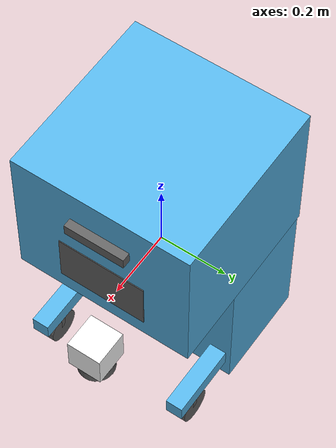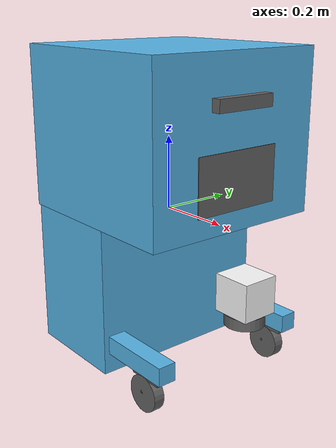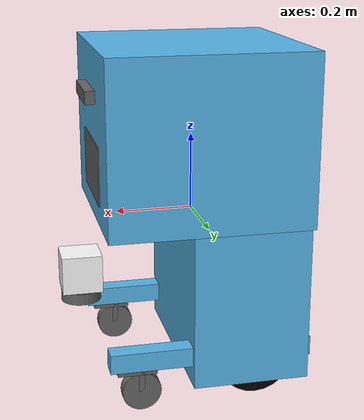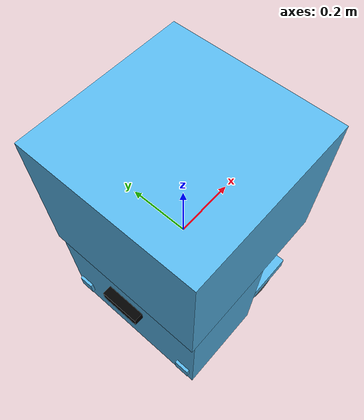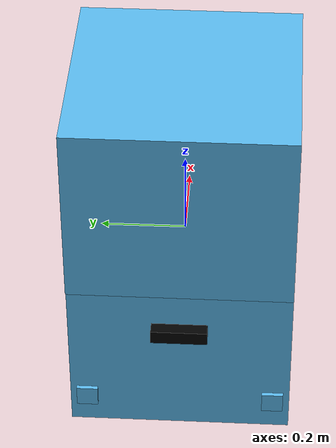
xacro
<?xml version='1.0'?>

<robot name="momobot" xmlns:xacro="http://www.ros.org/wiki/xacro">

  <!-- Params -->
  <xacro:property name="cameraSize" value="0.05"/>
  <xacro:property name="cameraMass" value="0.1"/>

  <!-- Trolley wheels -->
  <xacro:property name="wheel_t_radius" value="0.05"/>
  <xacro:property name="wheel_t_length" value="0.03"/>

  <!-- Main (Scooter) wheels -->
  <xacro:property name="wheel_m_radius" value="0.1"/>
  <xacro:property name="wheel_m_length" value="0.05"/>

  <!-- Dependencies -->
  <xacro:include filename="$(find mo2bot_description)/urdf/mo2bot.gazebo" />
  <xacro:include filename="$(find mo2bot_description)/urdf/materials.xacro" />
  <xacro:include filename="$(find mo2bot_description)/urdf/macros.xacro" />

  <!--Moment of Inertia: https://en.wikipedia.org/wiki/List_of_moments_of_inertia, checkout 3D inertial tensor -->

  <link name="base_link">
</link>
<joint name="baselink_to_basefootprint" type="fixed">
  <axis xyz="0 0 0"/>
  <parent link="base_link"/>
  <child link="base_footprint"/>
  <origin xyz="0 0 0" rpy="0 0 0" />
</joint>

  <link name="base_footprint">
    <inertial>
      <mass value="50.0"/>
      <origin xyz="0.0 0 0" rpy=" 0 0 0"/>
      <!-- Inertia calculation based on m=50, w=h=0.52, d=0.84-->
      <inertia
        ixx="4.0667" ixy="0" ixz="0"
        iyy="4.0667" iyz="0"
        izz="2.2533"
        />
      </inertial>

      <collision name="collision">
        <geometry>
          <box size=".52 .52 .84"/>
        </geometry>
      </collision>

      <!-- The chassis would be split into 2 parts: top & bottom-->
      <!--Top-->

      <visual name="base_link_visual_top">
        <origin xyz="0 0 0.22" rpy=" 0 0 0"/>
        <geometry>
          <box size=".52 .52 .44"/>
        </geometry>
      </visual>
      <!--Bottom-->
      <visual name="base_link_visual_bottom">
        <origin xyz="-0.10 0 -0.2" rpy=" 0 0 0"/>
        <geometry>
          <box size=".30 .52 .4"/>
        </geometry>
      </visual>

      <!--2 beams out-->
      <visual name="base_link_visual_bottom_left">
        <origin xyz="0 -0.22 -0.32" rpy=" 0 0 0"/>
        <geometry>
          <box size=".52 .05 .05"/>
        </geometry>
      </visual>

      <visual name="base_link_visual_bottom_right">
        <origin xyz="0 0.22 -0.32" rpy=" 0 0 0"/>
        <geometry>
          <box size=".52 .05 .05"/>
        </geometry>
      </visual>
    </link>

    <!--Left trolley wheel-->
    <link name="trolleyW_wheel_front_left">
      <collision name="collision_trolleyW_wheel_front_left">
        <origin xyz="0 0 0" rpy=" 0 1.5707 1.5707"/>
        <geometry>
          <cylinder radius="${wheel_t_radius}" length="${wheel_t_length}"/>
        </geometry>
        <surface>
          <friction>
            <ode>
              <mu>0</mu>
              <mu2>0</mu2>
              <slip1>1.0</slip1>
              <slip2>1.0</slip2>
            </ode>
          </friction>
        </surface>
      </collision>

      <visual name="visual_trolleyW_wheel_front_left">
        <origin xyz="0 0 0" rpy=" 0 1.5707 1.5707"/>
        <geometry>
          <cylinder radius="${wheel_t_radius}" length="${wheel_t_length}"/>
        </geometry>
        <material name="grey"/>
      </visual>

      <!-- Inertia calculation based on m=0.8, h=0.03, r=0.05-->
      <inertial>
        <mass value="0.8"/>
        <origin rpy="0 0 0" xyz="0 0 0"/>
        <inertia
          ixx="560e-6" ixy="0" ixz="0"
          iyy="560e-6" iyz="0"
          izz="0.001"   />
        </inertial>
      </link>

      <joint name="joint_trolleyW_wheel_front_left" type="continuous">
        <axis xyz="0 1 0"/>
        <parent link="trolleyW_holder_front_left"/>
        <child link="trolleyW_wheel_front_left"/>
        <origin xyz="-0.04 0 -0.06" rpy="0 0 0" />
      </joint>

      <!--Trolley wheel holder attachment-->
      <link name="trolleyW_holder_front_left">
        <collision name="collision_trolleyW_holder_front_left">
          <origin xyz="-0.03 0 -0.0075" rpy=" 0 0 0"/>
          <geometry>
            <box size=".1 .03 .015"/>
          </geometry>
          <surface>
            <friction>
              <ode>
                <mu>0</mu>
                <mu2>0</mu2>
                <slip1>1.0</slip1>
                <slip2>1.0</slip2>
              </ode>
            </friction>
          </surface>
        </collision>

        <visual name="visual_trolleyW_holderHorizontal_front_left">
          <origin xyz="-0.03 0 -0.0075" rpy=" 0 0 0"/>
          <geometry>
            <box size=".1 .03 .015"/>
          </geometry>
          <material name="grey"/>
        </visual>

        <visual name="visual_trolleyW_holderVertical_front_left">
          <origin xyz="-0.04 0 -0.03" rpy=" 0 0 0"/>
          <geometry>
            <box size=".015 .03 .06"/>
          </geometry>
          <material name="grey"/>
        </visual>

        <!-- Inertia calculation based on m=0.05, w = 0.1, h=0.03, d=0.015-->
        <inertial>
          <mass value="1"/>
          <origin rpy="-0.02 0 0" xyz="0 0 0"/>
          <inertia
            ixx="4.6875e-6" ixy="0" ixz="0"
            iyy="42.6041e-6" iyz="0"
            izz="45.4167e-6"   />
          </inertial>
        </link>

        <joint name="joint_trolleyW_front_left" type="continuous">
          <axis xyz="0 0 1"/>
          <parent link="base_link"/>
          <child link="trolleyW_holder_front_left"/>
          <origin xyz="0.22 0.22 -0.345" rpy="0 0 0" />
        </joint>

        <!--Right trolley wheel-->
        <link name="trolleyW_wheel_front_right">
          <collision name="collision_trolleyW_wheel_front_right">
            <origin xyz="0 0 0" rpy=" 0 1.5707 1.5707"/>
            <geometry>
              <cylinder radius="${wheel_t_radius}" length="${wheel_t_length}"/>
            </geometry>
            <surface>
              <friction>
                <ode>
                  <mu>0</mu>
                  <mu2>0</mu2>
                  <slip1>1.0</slip1>
                  <slip2>1.0</slip2>
                </ode>
              </friction>
            </surface>
          </collision>

          <visual name="visual_trolleyW_wheel_front_right">
            <origin xyz="0 0 0" rpy=" 0 1.5707 1.5707"/>
            <geometry>
              <cylinder radius="${wheel_t_radius}" length="${wheel_t_length}"/>
            </geometry>
            <material name="grey"/>
          </visual>

          <!-- Inertia calculation based on m=0.8, h=0.03, r=0.05-->
          <inertial>
            <mass value="0.8"/>
            <origin rpy="0 0 0" xyz="0 0 0"/>
            <inertia
              ixx="560e-6" ixy="0" ixz="0"
              iyy="560e-6" iyz="0"
              izz="0.001"   />
            </inertial>
          </link>

          <joint name="joint_trolleyW_wheel_front_right" type="continuous">
            <axis xyz="0 1 0"/>
            <parent link="trolleyW_holder_front_right"/>
            <child link="trolleyW_wheel_front_right"/>
            <origin xyz="-0.04 0 -0.06" rpy="0 0 0" />
          </joint>

          <!--Trolley wheel holder attachment-->
          <link name="trolleyW_holder_front_right">
            <collision name="collision_trolleyW_holder_front_right">
              <origin xyz="-0.03 0 -0.0075" rpy=" 0 0 0"/>
              <geometry>
                <box size=".1 .03 .015"/>
              </geometry>
              <surface>
                <friction>
                  <ode>
                    <mu>0</mu>
                    <mu2>0</mu2>
                    <slip1>1.0</slip1>
                    <slip2>1.0</slip2>
                  </ode>
                </friction>
              </surface>
            </collision>

            <visual name="visual_trolleyW_holderHorizontal_front_right">
              <origin xyz="-0.03 0 -0.0075" rpy=" 0 0 0"/>
              <geometry>
                <box size=".1 .03 .015"/>
              </geometry>
              <material name="grey"/>
            </visual>

            <visual name="visual_trolleyW_holderVertical_front_right">
              <origin xyz="-0.04 0 -0.03" rpy=" 0 0 0"/>
              <geometry>
                <box size=".015 .03 .06"/>
              </geometry>
              <material name="grey"/>
            </visual>

            <!-- Inertia calculation based on m=0.05, w = 0.1, h=0.03, d=0.015-->
            <inertial>
              <mass value="1"/>
              <origin rpy="-0.02 0 0" xyz="0 0 0"/>
              <inertia
                ixx="4.6875e-6" ixy="0" ixz="0"
                iyy="42.6041e-6" iyz="0"
                izz="45.4167e-6"   />
              </inertial>
            </link>

            <joint name="joint_trolleyW_front_right" type="continuous">
              <axis xyz="0 0 1"/>
              <parent link="base_link"/>
              <child link="trolleyW_holder_front_right"/>
              <origin xyz="0.22 -0.22 -0.345" rpy="0 0 0" />
            </joint>

            <!--

            Main Wheels

          -->
          <!-- Inertia calculation based on m=2, h=0.05, r=0.1-->
          <!-- Left front -->
          <link name="left_wheel">
            <!--origin xyz="0.1 0.13 0.1" rpy="0 1.5707 1.5707"/-->
            <collision name="collision">
              <origin xyz="0 0 0" rpy="0 1.5707 1.5707"/>
              <geometry>
                <cylinder radius="${wheel_m_radius}" length="${wheel_m_length}"/>
              </geometry>
            </collision>

            <visual name="left_wheel_visual">
              <origin xyz="0 0 0" rpy="0 1.5707 1.5707"/>
              <geometry>
                <cylinder radius="${wheel_m_radius}" length="${wheel_m_length}"/>
              </geometry>
              <material name="black"/>
            </visual>

            <inertial>
              <origin xyz="0 0 0" rpy="0 1.5707 1.5707"/>
              <mass value="5"/>
              <inertia
                ixx="5.4167e-3" ixy="0.0" ixz="0.0"
                iyy="5.4167e-3" iyz="0.0"
                izz="0.01"/>
              </inertial>
            </link>

            <!--Left wheel joint-->
            <joint type="continuous" name="left_wheel_joint">
              <origin xyz="-0.124 0.19 -.35" rpy="0 0 0"/>
              <!--origin xyz="0.1 0.13 0" rpy="0 1.5707 1.5707"/-->
              <child link="left_wheel"/>
              <parent link="base_link"/>
              <axis xyz="0 1 0" rpy="0 0 0"/>
              <limit effort="10000" velocity="1000"/>
              <joint_properties damping="1.0" friction="1.0"/>
            </joint>

            <!-- Right wheel -->
            <link name="right_wheel">
              <!--origin xyz="0.1 -0.13 0.1" rpy="0 1.5707 1.5707"/-->
              <collision name="collision">
                <origin xyz="0 0 0" rpy="0 1.5707 1.5707"/>
                <geometry>
                  <cylinder radius="${wheel_m_radius}" length="${wheel_m_length}"/>
                </geometry>
              </collision>
              <visual name="right_wheel_visual">
                <origin xyz="0 0 0" rpy="0 1.5707 1.5707"/>
                <geometry>
                  <cylinder radius="${wheel_m_radius}" length="${wheel_m_length}"/>
                </geometry>
                <material name="black"/>
              </visual>
              <inertial>
                <origin xyz="0 0 0" rpy="0 1.5707 1.5707"/>
                <mass value="5"/>
                <inertia
                  ixx="5.4167e-3" ixy="0.0" ixz="0.0"
                  iyy="5.4167e-3" iyz="0.0"
                  izz="0.01"/>
                </inertial>
              </link>

              <!--Right Wheel Joint-->
              <joint type="continuous" name="right_wheel_joint">
                <origin xyz="-0.124 -0.19 -.35" rpy="0 0 0"/>
                <!--origin xyz="0.1 -0.13 0" rpy="0 1.5707 1.5707"/-->
                <child link="right_wheel"/>
                <parent link="base_link"/>
                <axis xyz="0 1 0" rpy="0 0 0"/>
                <limit effort="10000" velocity="1000"/>
                <joint_properties damping="1.0" friction="1.0"/>
              </joint>

              <!--Lidar-->
              <joint name="sick_joint" type="fixed">
                <axis xyz="0 1 0" />
                <origin xyz=".3 0 -.22" rpy="3.1416 0 0"/>
                <parent link="base_link"/>
                <child link="sick_l"/>
              </joint>

              <!-- SICK Laser -->
              <link name="sick_l">
                <collision>
                  <origin xyz="0 0 -0.05" rpy="0 0 0"/>
                  <geometry>
                    <box size="0.105 0.102 0.28"/>
                  </geometry>
                </collision>
                <!--Top-->
                <visual name="sick_visual_top">
                  <origin xyz="0 0 0" rpy="0 0 0"/>
                  <geometry>
                    <cylinder radius="0.0525" length="0.03"/>
                  </geometry>
                  <material name="grey"/>
                </visual>
                <!--Body-->
                <visual name="sick_visual_body">
                  <origin xyz="0 0 -0.067" rpy="0 0 0"/>
                  <geometry>
                    <box size="0.105 0.102 0.1"/>
                  </geometry>
                  <material name="white"/>
                </visual>

                <inertial>
                  <mass value="1.1" />
                  <origin xyz="0 0 0" rpy="0 0 0"/>
                  <inertia ixx="1e-6" ixy="0" ixz="0" iyy="1e-6" iyz="0" izz="1e-6" />
                </inertial>
              </link>

              <!--Camera, Bottom back-->
              <link name="cam_back_btm">
                <collision>
                  <origin xyz="0 0 0" rpy="0 0 0"/>
                  <geometry>
                    <box size=".03 .130 .033"/>
                  </geometry>
                </collision>

                <visual>
                  <origin xyz="0 0 0" rpy="0 0 0"/>
                  <geometry>
                    <box size=".03 .130 .033"/>
                  </geometry>
                  <material name="black"/>
                </visual>

                <inertial>
                  <mass value="${cameraMass}" />
                  <origin xyz="0 0 0" rpy="0 0 0"/>
                  <box_inertia m="${cameraMass}" x="0.03" y="0.130" z="0.033" />
                  <inertia ixx="1e-6" ixy="0" ixz="0" iyy="1e-6" iyz="0" izz="1e-6" />
                </inertial>
              </link>

              <joint name="camera_joint" type="fixed">
                <axis xyz="0 1 0" />
                <origin xyz="-.27 0 -0.1" rpy="0 0 3.142"/>
                <parent link="base_link"/>
                <child link="cam_back_btm"/>
              </joint>

              <!-- Depth Camera, Front -->
              <!-- ZED Cam https://www.stereolabs.com/zed/ -->
              <link name="dcam_front">
                <collision>
                  <origin xyz="0 0 0" rpy="0 0 0"/>
                  <geometry>
                    <box size=".03 .175 .033"/>
                  </geometry>
                </collision>

                <visual>
                  <origin xyz="0 0 0" rpy="0 0 0"/>
                  <geometry>
                    <box size=".03 .175 .033"/>
                  </geometry>
                  <material name="grey"/>
                </visual>

                <inertial>
                  <mass value="0.159" />
                  <origin xyz="0 0 0" rpy="0 0 0"/>
                  <box_inertia m="0.159" x=".03" y=".175" z=".033" />
                  <inertia ixx="1e-6" ixy="0" ixz="0" iyy="1e-6" iyz="0" izz="1e-6" />
                </inertial>
              </link>

              <joint name="joint_dcam_front" type="fixed">
                <axis xyz="0 1 0" />
                <origin xyz=".27 0 0.32" rpy="0 0 0"/>
                <parent link="base_link"/>
                <child link="dcam_front"/>
              </joint>

              <!--Camera to Depth link -->

              <joint name="joint_dcam_front_depth" type="fixed">
                <origin xyz="0 0 0" rpy="${-3.1416/2} 0 ${-3.1416/2} "/>
                <parent link="dcam_front"/>
                <child link="dcam_front_depth"/>
              </joint>

              <link name="dcam_front_depth"></link>

              <!-- IMU -->
              <!-- With breadboard -->
              <link name="imu_link">
                <collision>
                  <origin xyz="0 0 0" rpy="0 0 0"/>
                  <geometry>
                    <box size=".0168 .0212 .005"/>
                  </geometry>
                </collision>

                <visual>
                  <origin xyz="0 0 0" rpy="0 0 0"/>
                  <geometry>
                    <box size=".0168 .0212 .005"/>
                  </geometry>
                  <material name="grey"/>
                </visual>

                <inertial>
                  <mass value="0.01" />
                  <origin xyz="0 0 0" rpy="0 0 0"/>
                  <box_inertia m="0.01" x=".0168" y=".0212" z=".005" />
                  <inertia ixx="1e-6" ixy="0" ixz="0" iyy="1e-6" iyz="0" izz="1e-6" />
                </inertial>
              </link>

              <joint name="joint_imu" type="fixed">
                <axis xyz="0 1 0" />
                <origin xyz="0.1 0.1 0.1" rpy="0 0 1.57"/>
                <parent link="base_link"/>
                <child link="imu_link"/>
              </joint>

              <!-- LCD Display -->
              <link name="lcd_screen">
                <collision>
                  <origin xyz="0 0 0" rpy="0 0 0"/>
                  <geometry>
                    <box size=".255 .150 .005"/>
                  </geometry>
                </collision>

                <visual>
                  <origin xyz="0 0 0" rpy="0 0 0"/>
                  <geometry>
                    <box size=".255 .150 .005"/>
                  </geometry>
                  <material name="grey"/>
                </visual>

                <inertial>
                  <mass value="0.2" />
                  <origin xyz="0 0 0" rpy="0 0 0"/>
                  <box_inertia m="0.159" x=".255" y=".150" z=".005" />
                  <inertia ixx="1e-6" ixy="0" ixz="0" iyy="1e-6" iyz="0" izz="1e-6" />
                </inertial>
              </link>

              <joint name="joint_lcd_screen" type="fixed">
                <axis xyz="0 1 0" />
                <origin xyz=".26 0 0.13" rpy="1.57 0 1.57"/>
                <parent link="base_link"/>
                <child link="lcd_screen"/>
              </joint>

            </robot>

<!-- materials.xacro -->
<robot>
  <material name="black">
    <color rgba="0.0 0.0 0.0 1.0"/>
  </material>

  <material name="blue">
    <color rgba="0.0 0.0 0.8 1.0"/>
  </material>

  <material name="green">
    <color rgba="0.0 0.8 0.0 1.0"/>
  </material>

  <material name="grey">
    <color rgba="${100/255} ${100/255} ${100/255} 1.0"/>
  </material>

  <material name="orange">
    <color rgba="${255/255} ${108/255} ${10/255} 1.0"/>
  </material>

  <material name="brown">
    <color rgba="${222/255} ${207/255} ${195/255} 1.0"/>
  </material>

  <material name="red">
    <color rgba="0.8 0.0 0.0 1.0"/>
  </material>

  <material name="white">
    <color rgba="1.0 1.0 1.0 1.0"/>
  </material>

</robot>
